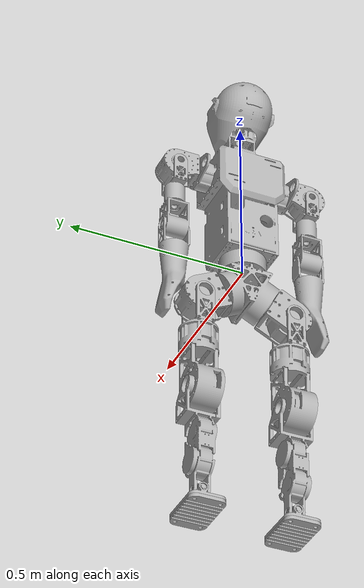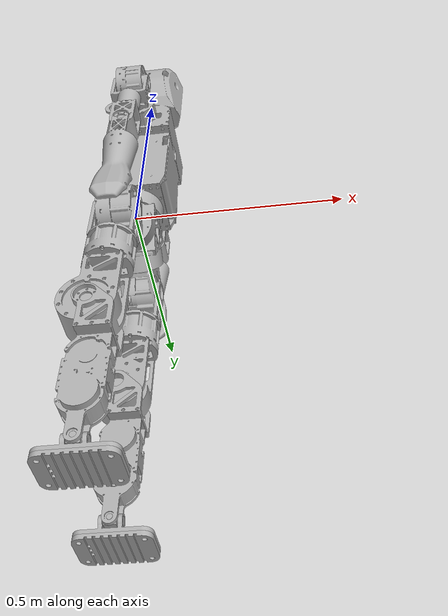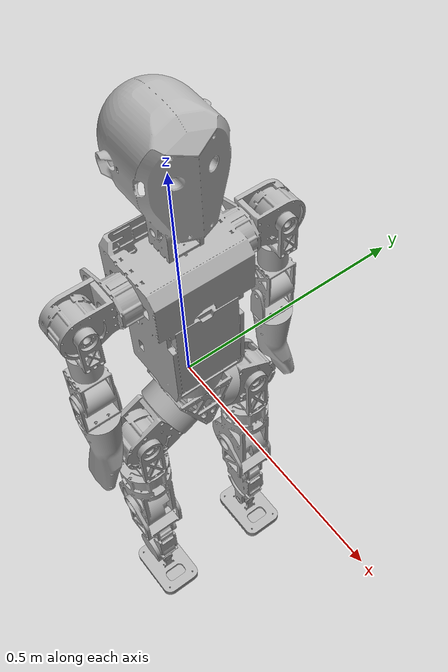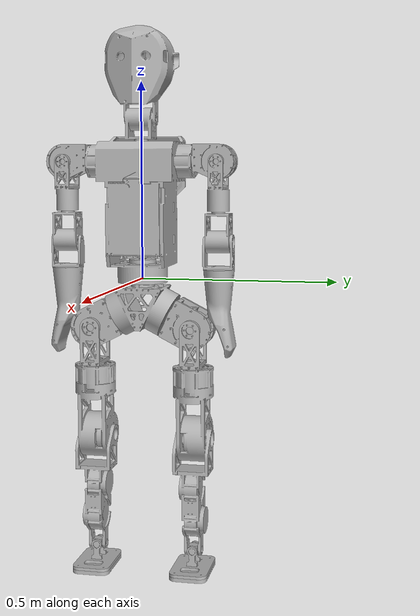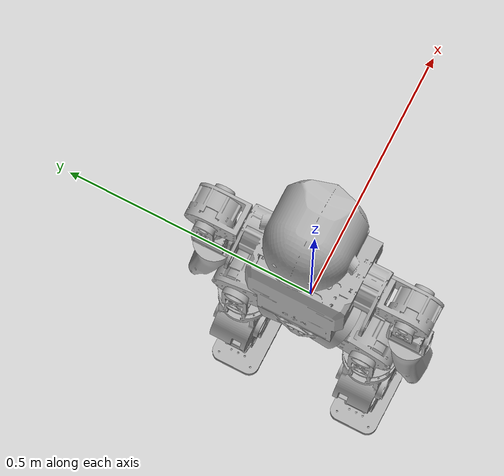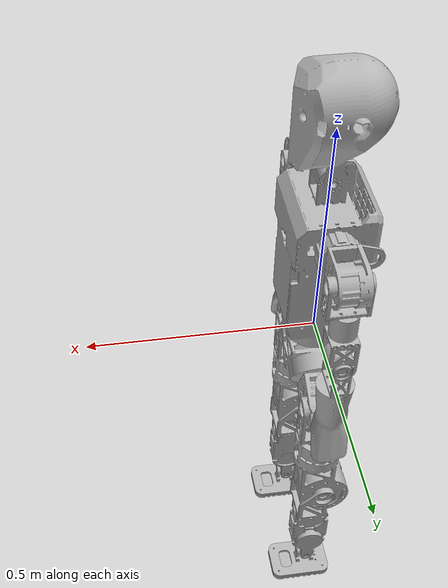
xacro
<?xml version="1.0" ?>
<robot name="roa_v4_21dof" xmlns:xacro="http://www.ros.org/wiki/xacro">

<xacro:include filename="$(find roa_motion_player)/description/urdf/materials.xacro" />
<xacro:include filename="$(find roa_motion_player)/description/urdf/roa_v4_21dof.trans" />
<xacro:include filename="$(find roa_motion_player)/description/urdf/roa_v4_21dof.gazebo" />

<!-- KDL requires the root link to have no inertia. Keep base_link as the
     robot body frame and attach it to a massless root frame. -->
<link name="base_footprint"/>
<joint name="base_footprint_to_base_link" type="fixed">
  <origin xyz="0 0 0" rpy="0 0 0"/>
  <parent link="base_footprint"/>
  <child link="base_link"/>
</joint>

<link name="base_link">
  <inertial>
    <origin xyz="-7.163416177454016e-06 2.809900717835358e-06 -0.0782412023463746" rpy="0 0 0"/>
    <mass value="3.70159"/>
    <inertia ixx="0.011475" iyy="0.00674" izz="0.011258" ixy="0.0" iyz="-1e-06" ixz="0.0"/>
  </inertial>
  <visual>
    <origin xyz="0 0 0" rpy="0 0 0"/>
    <geometry>
      <mesh filename="package://roa_motion_player/meshes/base_link.stl" scale="0.001 0.001 0.001"/>
    </geometry>
    <material name="silver"/>
  </visual>
  <collision>
    <origin xyz="0 0 0" rpy="0 0 0"/>
    <geometry>
      <mesh filename="package://roa_motion_player/meshes/base_link.stl" scale="0.001 0.001 0.001"/>
    </geometry>
  </collision>
</link>

<link name="right_hip_1">
  <inertial>
    <origin xyz="0.0005121134176557427 -0.05449331072961443 -0.027771520101012803" rpy="0 0 0"/>
    <mass value="1.66507"/>
    <inertia ixx="0.002772" iyy="0.001996" izz="0.002306" ixy="4e-06" iyz="-0.000214" ixz="2e-06"/>
  </inertial>
  <visual>
    <origin xyz="0.0 0.069232 0.095096" rpy="0 0 0"/>
    <geometry>
      <mesh filename="package://roa_motion_player/meshes/right_hip_1.stl" scale="0.001 0.001 0.001"/>
    </geometry>
    <material name="silver"/>
  </visual>
  <collision>
    <origin xyz="0.0 0.069232 0.095096" rpy="0 0 0"/>
    <geometry>
      <mesh filename="package://roa_motion_player/meshes/right_hip_1.stl" scale="0.001 0.001 0.001"/>
    </geometry>
  </collision>
</link>

<link name="left_hip_1">
  <inertial>
    <origin xyz="0.0005121134310494496 0.054497797487398 -0.02776271434742536" rpy="0 0 0"/>
    <mass value="1.66507"/>
    <inertia ixx="0.002772" iyy="0.001995" izz="0.002307" ixy="-4e-06" iyz="0.000214" ixz="2e-06"/>
  </inertial>
  <visual>
    <origin xyz="-0.0 -0.069232 0.095096" rpy="0 0 0"/>
    <geometry>
      <mesh filename="package://roa_motion_player/meshes/left_hip_1.stl" scale="0.001 0.001 0.001"/>
    </geometry>
    <material name="silver"/>
  </visual>
  <collision>
    <origin xyz="-0.0 -0.069232 0.095096" rpy="0 0 0"/>
    <geometry>
      <mesh filename="package://roa_motion_player/meshes/left_hip_1.stl" scale="0.001 0.001 0.001"/>
    </geometry>
  </collision>
</link>

<link name="right_hip_thigh_1">
  <inertial>
    <origin xyz="-0.03335982358339286 -8.21199821306462e-05 -0.05614032259859167" rpy="0 0 0"/>
    <mass value="0.321395200370441"/>
    <inertia ixx="0.000667" iyy="0.001041" izz="0.000535" ixy="1e-06" iyz="1e-06" ixz="-3.2e-05"/>
  </inertial>
  <visual>
    <origin xyz="-0.03275 0.132493 0.12733" rpy="0 0 0"/>
    <geometry>
      <mesh filename="package://roa_motion_player/meshes/right_hip_thigh_1.stl" scale="0.001 0.001 0.001"/>
    </geometry>
    <material name="silver"/>
  </visual>
  <collision>
    <origin xyz="-0.03275 0.132493 0.12733" rpy="0 0 0"/>
    <geometry>
      <mesh filename="package://roa_motion_player/meshes/right_hip_thigh_1.stl" scale="0.001 0.001 0.001"/>
    </geometry>
  </collision>
</link>

<link name="left_hip_thigh_1">
  <inertial>
    <origin xyz="-0.033359823569079336 -8.148136162097752e-05 -0.056141181884098196" rpy="0 0 0"/>
    <mass value="0.32139520037044045"/>
    <inertia ixx="0.000667" iyy="0.001041" izz="0.000535" ixy="1e-06" iyz="1e-06" ixz="-3.2e-05"/>
  </inertial>
  <visual>
    <origin xyz="-0.03275 -0.132493 0.127329" rpy="0 0 0"/>
    <geometry>
      <mesh filename="package://roa_motion_player/meshes/left_hip_thigh_1.stl" scale="0.001 0.001 0.001"/>
    </geometry>
    <material name="silver"/>
  </visual>
  <collision>
    <origin xyz="-0.03275 -0.132493 0.127329" rpy="0 0 0"/>
    <geometry>
      <mesh filename="package://roa_motion_player/meshes/left_hip_thigh_1.stl" scale="0.001 0.001 0.001"/>
    </geometry>
  </collision>
</link>

<link name="left_thigh_1">
  <inertial>
    <origin xyz="-0.010661779968585536 0.0010122408638040814 -0.11984559303234843" rpy="0 0 0"/>
    <mass value="3.658988"/>
    <inertia ixx="0.024147" iyy="0.02533" izz="0.00496" ixy="2.6e-05" iyz="0.000185" ixz="-0.002515"/>
  </inertial>
  <visual>
    <origin xyz="0.0025 -0.132493 0.237329" rpy="0 0 0"/>
    <geometry>
      <mesh filename="package://roa_motion_player/meshes/left_thigh_1.stl" scale="0.001 0.001 0.001"/>
    </geometry>
    <material name="silver"/>
  </visual>
  <collision>
    <origin xyz="0.0025 -0.132493 0.237329" rpy="0 0 0"/>
    <geometry>
      <mesh filename="package://roa_motion_player/meshes/left_thigh_1.stl" scale="0.001 0.001 0.001"/>
    </geometry>
  </collision>
</link>

<link name="right_thigh_1">
  <inertial>
    <origin xyz="-0.010661894115610124 -0.0008413371825257976 -0.11984473242194463" rpy="0 0 0"/>
    <mass value="3.658988"/>
    <inertia ixx="0.024148" iyy="0.02533" izz="0.004961" ixy="-3.2e-05" iyz="-0.000243" ixz="-0.002515"/>
  </inertial>
  <visual>
    <origin xyz="0.0025 0.132493 0.23733" rpy="0 0 0"/>
    <geometry>
      <mesh filename="package://roa_motion_player/meshes/right_thigh_1.stl" scale="0.001 0.001 0.001"/>
    </geometry>
    <material name="silver"/>
  </visual>
  <collision>
    <origin xyz="0.0025 0.132493 0.23733" rpy="0 0 0"/>
    <geometry>
      <mesh filename="package://roa_motion_player/meshes/right_thigh_1.stl" scale="0.001 0.001 0.001"/>
    </geometry>
  </collision>
</link>

<link name="left_shin_1">
  <inertial>
    <origin xyz="0.017021859166089302 -0.032298257853799944 -0.1524222893938174" rpy="0 0 0"/>
    <mass value="1.9365"/>
    <inertia ixx="0.009952" iyy="0.010041" izz="0.001718" ixy="-9e-06" iyz="0.000435" ixz="-5.3e-05"/>
  </inertial>
  <visual>
    <origin xyz="0.0225 -0.163993 0.424829" rpy="0 0 0"/>
    <geometry>
      <mesh filename="package://roa_motion_player/meshes/left_shin_1.stl" scale="0.001 0.001 0.001"/>
    </geometry>
    <material name="silver"/>
  </visual>
  <collision>
    <origin xyz="0.0225 -0.163993 0.424829" rpy="0 0 0"/>
    <geometry>
      <mesh filename="package://roa_motion_player/meshes/left_shin_1.stl" scale="0.001 0.001 0.001"/>
    </geometry>
  </collision>
</link>

<link name="right_shin_1">
  <inertial>
    <origin xyz="0.017025964170585006 0.03229673179287712 -0.15232292660081742" rpy="0 0 0"/>
    <mass value="1.9365"/>
    <inertia ixx="0.009945" iyy="0.010033" izz="0.001718" ixy="9e-06" iyz="-0.000435" ixz="-6.1e-05"/>
  </inertial>
  <visual>
    <origin xyz="0.022504 0.163991 0.42483" rpy="0 0 0"/>
    <geometry>
      <mesh filename="package://roa_motion_player/meshes/right_shin_1.stl" scale="0.001 0.001 0.001"/>
    </geometry>
    <material name="silver"/>
  </visual>
  <collision>
    <origin xyz="0.022504 0.163991 0.42483" rpy="0 0 0"/>
    <geometry>
      <mesh filename="package://roa_motion_player/meshes/right_shin_1.stl" scale="0.001 0.001 0.001"/>
    </geometry>
  </collision>
</link>

<link name="right_ankle_1">
  <inertial>
    <origin xyz="0.00030298070446027527 -0.014499584864505796 9.412528256813602e-08" rpy="0 0 0"/>
    <mass value="0.05161853272203562"/>
    <inertia ixx="5e-06" iyy="9e-06" izz="1e-05" ixy="0.0" iyz="0.0" ixz="-0.0"/>
  </inertial>
  <visual>
    <origin xyz="0.006498 0.117193 0.72383" rpy="0 0 0"/>
    <geometry>
      <mesh filename="package://roa_motion_player/meshes/right_ankle_1.stl" scale="0.001 0.001 0.001"/>
    </geometry>
    <material name="silver"/>
  </visual>
  <collision>
    <origin xyz="0.006498 0.117193 0.72383" rpy="0 0 0"/>
    <geometry>
      <mesh filename="package://roa_motion_player/meshes/right_ankle_1.stl" scale="0.001 0.001 0.001"/>
    </geometry>
  </collision>
</link>

<link name="left_ankle_1">
  <inertial>
    <origin xyz="0.00030487547740298306 0.014500554663313778 -7.741002557848375e-07" rpy="0 0 0"/>
    <mass value="0.05161853272203551"/>
    <inertia ixx="5e-06" iyy="9e-06" izz="1e-05" ixy="0.0" iyz="0.0" ixz="-0.0"/>
  </inertial>
  <visual>
    <origin xyz="0.0065 -0.117193 0.723829" rpy="0 0 0"/>
    <geometry>
      <mesh filename="package://roa_motion_player/meshes/left_ankle_1.stl" scale="0.001 0.001 0.001"/>
    </geometry>
    <material name="silver"/>
  </visual>
  <collision>
    <origin xyz="0.0065 -0.117193 0.723829" rpy="0 0 0"/>
    <geometry>
      <mesh filename="package://roa_motion_player/meshes/left_ankle_1.stl" scale="0.001 0.001 0.001"/>
    </geometry>
  </collision>
</link>

<link name="right_foot_1">
  <inertial>
    <origin xyz="-0.009582401269887304 -4.0426365083279237e-07 -0.04129460873280966" rpy="0 0 0"/>
    <mass value="0.31411093563645764"/>
    <inertia ixx="0.000277" iyy="0.000563" izz="0.000783" ixy="0.0" iyz="-0.0" ixz="9e-06"/>
  </inertial>
  <visual>
    <origin xyz="-0.0132 0.131695 0.72383" rpy="0 0 0"/>
    <geometry>
      <mesh filename="package://roa_motion_player/meshes/right_foot_1.stl" scale="0.001 0.001 0.001"/>
    </geometry>
    <material name="silver"/>
  </visual>
  <collision>
    <origin xyz="-0.0132 0.131695 0.72383" rpy="0 0 0"/>
    <geometry>
      <mesh filename="package://roa_motion_player/meshes/right_foot_1.stl" scale="0.001 0.001 0.001"/>
    </geometry>
  </collision>
</link>

<link name="left_foot_1">
  <inertial>
    <origin xyz="-0.00958250629304781 3.551598510842524e-07 -0.04129547695834768" rpy="0 0 0"/>
    <mass value="0.3141109356364569"/>
    <inertia ixx="0.000277" iyy="0.000563" izz="0.000783" ixy="0.0" iyz="-0.0" ixz="9e-06"/>
  </inertial>
  <visual>
    <origin xyz="-0.0132 -0.131693 0.723829" rpy="0 0 0"/>
    <geometry>
      <mesh filename="package://roa_motion_player/meshes/left_foot_1.stl" scale="0.001 0.001 0.001"/>
    </geometry>
    <material name="silver"/>
  </visual>
  <collision>
    <origin xyz="-0.0132 -0.131693 0.723829" rpy="0 0 0"/>
    <geometry>
      <mesh filename="package://roa_motion_player/meshes/left_foot_1.stl" scale="0.001 0.001 0.001"/>
    </geometry>
  </collision>
</link>

<link name="right_TPU_pad_1">
  <inertial>
    <origin xyz="-0.0594239452759319 0.03499959573633321 -0.004620143823127032" rpy="0 0 0"/>
    <mass value="0.11647597504873854"/>
    <inertia ixx="9.5e-05" iyy="0.000223" izz="0.000316" ixy="-0.0" iyz="0.0" ixz="-0.0"/>
  </inertial>
  <visual>
    <origin xyz="-0.0682 0.166695 0.77183" rpy="0 0 0"/>
    <geometry>
      <mesh filename="package://roa_motion_player/meshes/right_TPU_pad_1.stl" scale="0.001 0.001 0.001"/>
    </geometry>
    <material name="silver"/>
  </visual>
  <collision>
    <origin xyz="-0.0682 0.166695 0.77183" rpy="0 0 0"/>
    <geometry>
      <mesh filename="package://roa_motion_player/meshes/right_TPU_pad_1.stl" scale="0.001 0.001 0.001"/>
    </geometry>
  </collision>
</link>

<link name="left_TPU_pad_1">
  <inertial>
    <origin xyz="-0.05942405029909288 -0.034999644840164434 -0.004621012048665607" rpy="0 0 0"/>
    <mass value="0.11647597504873854"/>
    <inertia ixx="9.5e-05" iyy="0.000223" izz="0.000316" ixy="-0.0" iyz="0.0" ixz="-0.0"/>
  </inertial>
  <visual>
    <origin xyz="-0.0682 -0.166693 0.771829" rpy="0 0 0"/>
    <geometry>
      <mesh filename="package://roa_motion_player/meshes/left_TPU_pad_1.stl" scale="0.001 0.001 0.001"/>
    </geometry>
    <material name="silver"/>
  </visual>
  <collision>
    <origin xyz="-0.0682 -0.166693 0.771829" rpy="0 0 0"/>
    <geometry>
      <mesh filename="package://roa_motion_player/meshes/left_TPU_pad_1.stl" scale="0.001 0.001 0.001"/>
    </geometry>
  </collision>
</link>

<link name="torso_dummy_1">
  <inertial>
    <origin xyz="0.0063897 0.006826 0.219355" rpy="0 0 0"/>
    <mass value="10.56"/>
    <inertia
        ixx="0.2640893"
        iyy="0.2405354"
        izz="0.0547235"
        ixy="-0.00020524"
        ixz="0.00070433"
        iyz="-0.00233757"/>
  </inertial>

  <visual>
    <origin xyz="0 0 0" rpy="0 0 0"/>
    <geometry>
      <mesh
          filename="package://roa_motion_player/meshes/torso_dummy_1.stl"
          scale="0.001 0.001 0.001"/>
    </geometry>
    <material name="silver"/>
  </visual>

  <collision>
    <origin xyz="0 0 0" rpy="0 0 0"/>
    <geometry>
      <mesh
          filename="package://roa_motion_player/meshes/torso_dummy_1.stl"
          scale="0.001 0.001 0.001"/>
    </geometry>
  </collision>
</link>

<link name="left_shoulder_1">
  <inertial>
    <origin xyz="-0.0026111732343341966 0.05925170766995819 0.0016708632691230796" rpy="0 0 0"/>
    <mass value="0.9861530183252302"/>
    <inertia ixx="0.00121" iyy="0.000773" izz="0.00107" ixy="0.0" iyz="6.6e-05" ixz="1e-06"/>
  </inertial>
  <visual>
    <origin xyz="-0.005 -0.1325 -0.2995" rpy="0 0 0"/>
    <geometry>
      <mesh filename="package://roa_motion_player/meshes/left_shoulder_1.stl" scale="0.001 0.001 0.001"/>
    </geometry>
    <material name="silver"/>
  </visual>
  <collision>
    <origin xyz="-0.005 -0.1325 -0.2995" rpy="0 0 0"/>
    <geometry>
      <mesh filename="package://roa_motion_player/meshes/left_shoulder_1.stl" scale="0.001 0.001 0.001"/>
    </geometry>
  </collision>
</link>

<link name="left_upper_arm_1">
  <inertial>
    <origin xyz="-0.02849405549868654 1.591830606434419e-05 -0.0733249736998087" rpy="0 0 0"/>
    <mass value="0.57489496004282"/>
    <inertia ixx="0.000922" iyy="0.001115" izz="0.000397" ixy="-0.0" iyz="-0.0" ixz="4.6e-05"/>
  </inertial>
  <visual>
    <origin xyz="-0.031 -0.1995 -0.2995" rpy="0 0 0"/>
    <geometry>
      <mesh filename="package://roa_motion_player/meshes/left_upper_arm_1.stl" scale="0.001 0.001 0.001"/>
    </geometry>
    <material name="silver"/>
  </visual>
  <collision>
    <origin xyz="-0.031 -0.1995 -0.2995" rpy="0 0 0"/>
    <geometry>
      <mesh filename="package://roa_motion_player/meshes/left_upper_arm_1.stl" scale="0.001 0.001 0.001"/>
    </geometry>
  </collision>
</link>

<link name="left_lower_arm_1">
  <inertial>
    <origin xyz="-1.2688175113881144e-05 0.0011580057847586922 -0.06833500051346542" rpy="0 0 0"/>
    <mass value="0.5116000430017309"/>
    <inertia ixx="0.000568" iyy="0.000509" izz="0.000292" ixy="-0.0" iyz="-8e-06" ixz="0.0"/>
  </inertial>
  <visual>
    <origin xyz="-0.0035 -0.1995 -0.1775" rpy="0 0 0"/>
    <geometry>
      <mesh filename="package://roa_motion_player/meshes/left_lower_arm_1.stl" scale="0.001 0.001 0.001"/>
    </geometry>
    <material name="silver"/>
  </visual>
  <collision>
    <origin xyz="-0.0035 -0.1995 -0.1775" rpy="0 0 0"/>
    <geometry>
      <mesh filename="package://roa_motion_player/meshes/left_lower_arm_1.stl" scale="0.001 0.001 0.001"/>
    </geometry>
  </collision>
</link>

<link name="right_shoulder_1">
  <inertial>
    <origin xyz="-0.0026111732343283033 -0.05925170766996374 0.0016708632691233571" rpy="0 0 0"/>
    <mass value="0.9861530183251093"/>
    <inertia ixx="0.00121" iyy="0.000773" izz="0.00107" ixy="-0.0" iyz="-6.6e-05" ixz="1e-06"/>
  </inertial>
  <visual>
    <origin xyz="-0.005 0.1325 -0.2995" rpy="0 0 0"/>
    <geometry>
      <mesh filename="package://roa_motion_player/meshes/right_shoulder_1.stl" scale="0.001 0.001 0.001"/>
    </geometry>
    <material name="silver"/>
  </visual>
  <collision>
    <origin xyz="-0.005 0.1325 -0.2995" rpy="0 0 0"/>
    <geometry>
      <mesh filename="package://roa_motion_player/meshes/right_shoulder_1.stl" scale="0.001 0.001 0.001"/>
    </geometry>
  </collision>
</link>

<link name="right_upper_arm_1">
  <inertial>
    <origin xyz="-0.02849405549867796 1.5918306037449037e-05 -0.07332497369980742" rpy="0 0 0"/>
    <mass value="0.5748949600428195"/>
    <inertia ixx="0.000922" iyy="0.001115" izz="0.000397" ixy="-0.0" iyz="-0.0" ixz="4.6e-05"/>
  </inertial>
  <visual>
    <origin xyz="-0.031 0.1995 -0.2995" rpy="0 0 0"/>
    <geometry>
      <mesh filename="package://roa_motion_player/meshes/right_upper_arm_1.stl" scale="0.001 0.001 0.001"/>
    </geometry>
    <material name="silver"/>
  </visual>
  <collision>
    <origin xyz="-0.031 0.1995 -0.2995" rpy="0 0 0"/>
    <geometry>
      <mesh filename="package://roa_motion_player/meshes/right_upper_arm_1.stl" scale="0.001 0.001 0.001"/>
    </geometry>
  </collision>
</link>

<link name="right_lower_arm_1">
  <inertial>
    <origin xyz="-1.268817505960685e-05 -0.001158010129289816 -0.06833500051339506" rpy="0 0 0"/>
    <mass value="0.5116000430019619"/>
    <inertia ixx="0.000568" iyy="0.000509" izz="0.000292" ixy="0.0" iyz="8e-06" ixz="0.0"/>
  </inertial>
  <visual>
    <origin xyz="-0.0035 0.1995 -0.1775" rpy="0 0 0"/>
    <geometry>
      <mesh filename="package://roa_motion_player/meshes/right_lower_arm_1.stl" scale="0.001 0.001 0.001"/>
    </geometry>
    <material name="silver"/>
  </visual>
  <collision>
    <origin xyz="-0.0035 0.1995 -0.1775" rpy="0 0 0"/>
    <geometry>
      <mesh filename="package://roa_motion_player/meshes/right_lower_arm_1.stl" scale="0.001 0.001 0.001"/>
    </geometry>
  </collision>
</link>

<link name="right_hand_1">
  <inertial>
    <origin xyz="2.3892082779645302e-08 0.023237660827567674 -0.15196250734817957" rpy="0 0 0"/>
    <mass value="0.359"/>
    <inertia ixx="0.008586" iyy="0.008528" izz="0.001327" ixy="-0.0" iyz="-0.001008" ixz="0.0"/>
  </inertial>
  <visual>
    <origin xyz="-0.0035 0.2295 -0.0975" rpy="0 0 0"/>
    <geometry>
      <mesh filename="package://roa_motion_player/meshes/right_hand_1.stl" scale="0.001 0.001 0.001"/>
    </geometry>
    <material name="silver"/>
  </visual>
  <collision>
    <origin xyz="-0.0035 0.2295 -0.0975" rpy="0 0 0"/>
    <geometry>
      <mesh filename="package://roa_motion_player/meshes/right_hand_1.stl" scale="0.001 0.001 0.001"/>
    </geometry>
  </collision>
</link>

<link name="left_hand_1">
  <inertial>
    <origin xyz="-8.931090637182004e-08 -0.023237637063275002 -0.15196249875367882" rpy="0 0 0"/>
    <mass value="0.359"/>
    <inertia ixx="0.008586" iyy="0.008528" izz="0.001327" ixy="0.0" iyz="0.001008" ixz="0.0"/>
  </inertial>
  <visual>
    <origin xyz="-0.0035 -0.2295 -0.0975" rpy="0 0 0"/>
    <geometry>
      <mesh filename="package://roa_motion_player/meshes/left_hand_1.stl" scale="0.001 0.001 0.001"/>
    </geometry>
    <material name="silver"/>
  </visual>
  <collision>
    <origin xyz="-0.0035 -0.2295 -0.0975" rpy="0 0 0"/>
    <geometry>
      <mesh filename="package://roa_motion_player/meshes/left_hand_1.stl" scale="0.001 0.001 0.001"/>
    </geometry>
  </collision>
</link>

<link name="imu_sensor_1">
  <inertial>
    <origin xyz="-1.92945889108216e-05 6.303846115872468e-05 0.0007480314385152481" rpy="0 0 0"/>
    <mass value="0.0012071805701893612"/>
    <inertia ixx="0.0" iyy="0.0" izz="0.0" ixy="0.0" iyz="0.0" ixz="0.0"/>
  </inertial>
  <visual>
    <origin xyz="-0.0 0.0 -0.0505" rpy="0 0 0"/>
    <geometry>
      <mesh filename="package://roa_motion_player/meshes/imu_sensor_1.stl" scale="0.001 0.001 0.001"/>
    </geometry>
    <material name="silver"/>
  </visual>
  <collision>
    <origin xyz="-0.0 0.0 -0.0505" rpy="0 0 0"/>
    <geometry>
      <mesh filename="package://roa_motion_player/meshes/imu_sensor_1.stl" scale="0.001 0.001 0.001"/>
    </geometry>
  </collision>
</link>

<joint name="right_hip_pitch" type="revolute">
  <origin xyz="0.0 -0.069232 -0.095096" rpy="0 0 0"/>
  <parent link="base_link"/>
  <child link="right_hip_1"/>
  <axis xyz="-0.0 -0.891007 -0.45399"/>
  <limit upper="1.570796" lower="-1.570796" effort="120.0" velocity="20.9"/>
</joint>

<joint name="left_hip_pitch" type="revolute">
  <origin xyz="0.0 0.069232 -0.095096" rpy="0 0 0"/>
  <parent link="base_link"/>
  <child link="left_hip_1"/>
  <axis xyz="0.0 0.891007 -0.45399"/>
  <limit upper="1.570796" lower="-1.570796" effort="120.0" velocity="20.9"/>
</joint>

<joint name="right_hip_roll" type="revolute">
  <origin xyz="0.03275 -0.063261 -0.032234" rpy="0 0 0"/>
  <parent link="right_hip_1"/>
  <child link="right_hip_thigh_1"/>
  <axis xyz="1.0 0.0 -0.0"/>
  <limit upper="0.150000" lower="-0.468000" effort="60.0" velocity="20.4"/>
</joint>

<joint name="left_hip_roll" type="revolute">
  <origin xyz="0.03275 0.063261 -0.032233" rpy="0 0 0"/>
  <parent link="left_hip_1"/>
  <child link="left_hip_thigh_1"/>
  <axis xyz="1.0 0.0 0.0"/>
  <limit upper="0.468000" lower="-0.150000" effort="60.0" velocity="20.4"/>
</joint>

<joint name="left_hip_yaw" type="revolute">
  <origin xyz="-0.03525 0.0 -0.11" rpy="0 0 0"/>
  <parent link="left_hip_thigh_1"/>
  <child link="left_thigh_1"/>
  <axis xyz="-0.0 0.0 1.0"/>
  <limit upper="1.570796" lower="-1.570796" effort="60.0" velocity="20.4"/>
</joint>

<joint name="right_hip_yaw" type="revolute">
  <origin xyz="-0.03525 0.0 -0.11" rpy="0 0 0"/>
  <parent link="right_hip_thigh_1"/>
  <child link="right_thigh_1"/>
  <axis xyz="-0.0 0.0 1.0"/>
  <limit upper="1.570796" lower="-1.570796" effort="60.0" velocity="20.4"/>
</joint>

<joint name="left_knee_pitch" type="revolute">
  <origin xyz="-0.02 0.0315 -0.1875" rpy="0 0 0"/>
  <parent link="left_thigh_1"/>
  <child link="left_shin_1"/>
  <axis xyz="-0.0 1.0 0.0"/>
  <limit upper="1.570796" lower="-1.570796" effort="120.0" velocity="20.9"/>
</joint>

<joint name="right_knee_pitch" type="revolute">
  <origin xyz="-0.020004 -0.031498 -0.1875" rpy="0 0 0"/>
  <parent link="right_thigh_1"/>
  <child link="right_shin_1"/>
  <axis xyz="-0.000135 -1.0 0.0"/>
  <limit upper="1.570796" lower="-1.570796" effort="120.0" velocity="20.9"/>
</joint>

<joint name="right_ankle_pitch" type="revolute">
  <origin xyz="0.016006 0.046798 -0.299" rpy="0 0 0"/>
  <parent link="right_shin_1"/>
  <child link="right_ankle_1"/>
  <axis xyz="-0.000135 -1.0 0.0"/>
  <limit upper="0.628319" lower="-0.689405" effort="36.0" velocity="50.3"/>
</joint>

<joint name="left_ankle_pitch" type="revolute">
  <origin xyz="0.016 -0.0468 -0.299" rpy="0 0 0"/>
  <parent link="left_shin_1"/>
  <child link="left_ankle_1"/>
  <axis xyz="0.0 1.0 0.0"/>
  <limit upper="0.689405" lower="-0.628319" effort="36.0" velocity="50.3"/>
</joint>

<joint name="right_ankle_roll" type="revolute">
  <origin xyz="0.019698 -0.014502 0.0" rpy="0 0 0"/>
  <parent link="right_ankle_1"/>
  <child link="right_foot_1"/>
  <axis xyz="1.0 0.0 -0.0"/>
  <limit upper="0.314159" lower="-0.305433" effort="36.0" velocity="50.3"/>
</joint>

<joint name="left_ankle_roll" type="revolute">
  <origin xyz="0.0197 0.0145 0.0" rpy="0 0 0"/>
  <parent link="left_ankle_1"/>
  <child link="left_foot_1"/>
  <axis xyz="1.0 -0.0 0.0"/>
  <limit upper="0.305433" lower="-0.314159" effort="36.0" velocity="50.3"/>
</joint>

<joint name="rigid_right_TPU" type="fixed">
  <origin xyz="0.055 -0.035 -0.048" rpy="0 0 0"/>
  <parent link="right_foot_1"/>
  <child link="right_TPU_pad_1"/>
</joint>

<joint name="rigid_left_TPU" type="fixed">
  <origin xyz="0.055 0.035 -0.048" rpy="0 0 0"/>
  <parent link="left_foot_1"/>
  <child link="left_TPU_pad_1"/>
</joint>

<!-- Motor ID 9 -->
<joint name="torso_yaw" type="revolute">
  <origin xyz="0.0 0.0 0.0" rpy="0 0 0"/>
  <parent link="base_link"/>
  <child link="torso_dummy_1"/>
  <axis xyz="0.0 0.0 1.0"/>
  <limit upper="1.570796" lower="-1.570796" effort="36.0" velocity="50.0"/>
</joint>

<!-- Motor ID 0 -->
<joint name="left_shoulder_pitch" type="revolute">
  <origin xyz="0.005 0.1325 0.2995" rpy="0 0 0"/>
  <parent link="torso_dummy_1"/>
  <child link="left_shoulder_1"/>
  <axis xyz="0.0 1.0 0.0"/>
  <limit upper="3.141593" lower="-3.141593" effort="36.0" velocity="50.0"/>
</joint>

<!-- Motor ID 2 -->
<joint name="left_shoulder_roll" type="revolute">
  <origin xyz="0.026 0.067 0.0" rpy="0 0 0"/>
  <parent link="left_shoulder_1"/>
  <child link="left_upper_arm_1"/>
  <axis xyz="1.0 0.0 0.0"/>
  <limit upper="3.141593" lower="-3.141593" effort="36.0" velocity="50.0"/>
</joint>

<!-- Motor ID 4 -->
<joint name="left_arm_yaw" type="revolute">
  <origin xyz="-0.0275 0.0 -0.122" rpy="0 0 0"/>
  <parent link="left_upper_arm_1"/>
  <child link="left_lower_arm_1"/>
  <axis xyz="0.0 0.0 -1.0"/>
  <limit upper="3.141593" lower="-3.141593" effort="14.0" velocity="33.0"/>
</joint>

<!-- Motor ID 1 -->
<joint name="right_shoulder_pitch" type="revolute">
  <origin xyz="0.005 -0.1325 0.2995" rpy="0 0 0"/>
  <parent link="torso_dummy_1"/>
  <child link="right_shoulder_1"/>
  <axis xyz="0.0 -1.0 0.0"/>
  <limit upper="3.141593" lower="-3.141593" effort="36.0" velocity="50.0"/>
</joint>

<!-- Motor ID 3 -->
<joint name="right_shoulder_roll" type="revolute">
  <origin xyz="0.026 -0.067 0.0" rpy="0 0 0"/>
  <parent link="right_shoulder_1"/>
  <child link="right_upper_arm_1"/>
  <axis xyz="1.0 0.0 0.0"/>
  <limit upper="3.141593" lower="-3.141593" effort="36.0" velocity="50.0"/>
</joint>

<!-- Motor ID 5 -->
<joint name="right_arm_yaw" type="revolute">
  <origin xyz="-0.0275 0.0 -0.122" rpy="0 0 0"/>
  <parent link="right_upper_arm_1"/>
  <child link="right_lower_arm_1"/>
  <axis xyz="0.0 0.0 -1.0"/>
  <limit upper="3.141593" lower="-3.141593" effort="14.0" velocity="33.0"/>
</joint>

<!-- Motor ID 7 -->
<joint name="right_arm_pitch" type="revolute">
  <origin xyz="0.0 -0.03 -0.08" rpy="0 0 0"/>
  <parent link="right_lower_arm_1"/>
  <child link="right_hand_1"/>
  <axis xyz="0.0 -1.0 0.0"/>
  <limit upper="3.141593" lower="-3.141593" effort="14.0" velocity="33.0"/>
</joint>

<!-- Motor ID 6 -->
<joint name="left_arm_pitch" type="revolute">
  <origin xyz="0.0 0.03 -0.08" rpy="0 0 0"/>
  <parent link="left_lower_arm_1"/>
  <child link="left_hand_1"/>
  <axis xyz="0.0 1.0 0.0"/>
  <limit upper="3.141593" lower="-3.141593" effort="14.0" velocity="33.0"/>
</joint>

<joint name="imu" type="fixed">
  <origin xyz="0.0 -0.0 0.0505" rpy="0 0 0"/>
  <parent link="torso_dummy_1"/>
  <child link="imu_sensor_1"/>
</joint>

</robot>

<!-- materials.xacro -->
<robot name="roa_v4_21dof_materials" xmlns:xacro="http://www.ros.org/wiki/xacro" >

<material name="silver">
  <color rgba="0.700 0.700 0.700 1.000"/>
</material>

</robot>

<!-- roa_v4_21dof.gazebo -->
<robot name="roa_v4_21dof_gazebo" xmlns:xacro="http://www.ros.org/wiki/xacro" >

<xacro:property name="body_color" value="Gazebo/Silver" />

<gazebo>
  <plugin name="control" filename="libgazebo_ros_control.so"/>
</gazebo>
<gazebo reference="base_link">
  <material>${body_color}</material>
  <mu1>0.2</mu1>
  <mu2>0.2</mu2>
  <self_collide>true</self_collide>
  <gravity>true</gravity>
</gazebo>

<gazebo reference="right_hip_1">
  <material>${body_color}</material>
  <mu1>0.2</mu1>
  <mu2>0.2</mu2>
  <self_collide>true</self_collide>
</gazebo>

<gazebo reference="left_hip_1">
  <material>${body_color}</material>
  <mu1>0.2</mu1>
  <mu2>0.2</mu2>
  <self_collide>true</self_collide>
</gazebo>

<gazebo reference="right_hip_thigh_1">
  <material>${body_color}</material>
  <mu1>0.2</mu1>
  <mu2>0.2</mu2>
  <self_collide>true</self_collide>
</gazebo>

<gazebo reference="left_hip_thigh_1">
  <material>${body_color}</material>
  <mu1>0.2</mu1>
  <mu2>0.2</mu2>
  <self_collide>true</self_collide>
</gazebo>

<gazebo reference="left_thigh_1">
  <material>${body_color}</material>
  <mu1>0.2</mu1>
  <mu2>0.2</mu2>
  <self_collide>true</self_collide>
</gazebo>

<gazebo reference="right_thigh_1">
  <material>${body_color}</material>
  <mu1>0.2</mu1>
  <mu2>0.2</mu2>
  <self_collide>true</self_collide>
</gazebo>

<gazebo reference="left_shin_1">
  <material>${body_color}</material>
  <mu1>0.2</mu1>
  <mu2>0.2</mu2>
  <self_collide>true</self_collide>
</gazebo>

<gazebo reference="right_shin_1">
  <material>${body_color}</material>
  <mu1>0.2</mu1>
  <mu2>0.2</mu2>
  <self_collide>true</self_collide>
</gazebo>

<gazebo reference="right_ankle_1">
  <material>${body_color}</material>
  <mu1>0.2</mu1>
  <mu2>0.2</mu2>
  <self_collide>true</self_collide>
</gazebo>

<gazebo reference="left_ankle_1">
  <material>${body_color}</material>
  <mu1>0.2</mu1>
  <mu2>0.2</mu2>
  <self_collide>true</self_collide>
</gazebo>

<gazebo reference="right_foot_1">
  <material>${body_color}</material>
  <mu1>0.2</mu1>
  <mu2>0.2</mu2>
  <self_collide>true</self_collide>
</gazebo>

<gazebo reference="left_foot_1">
  <material>${body_color}</material>
  <mu1>0.2</mu1>
  <mu2>0.2</mu2>
  <self_collide>true</self_collide>
</gazebo>

<gazebo reference="right_TPU_pad_1">
  <material>${body_color}</material>
  <mu1>0.2</mu1>
  <mu2>0.2</mu2>
  <self_collide>true</self_collide>
</gazebo>

<gazebo reference="left_TPU_pad_1">
  <material>${body_color}</material>
  <mu1>0.2</mu1>
  <mu2>0.2</mu2>
  <self_collide>true</self_collide>
</gazebo>

<gazebo reference="torso_dummy_1">
  <material>${body_color}</material>
  <mu1>0.2</mu1>
  <mu2>0.2</mu2>
  <self_collide>true</self_collide>
</gazebo>

<gazebo reference="left_shoulder_1">
  <material>${body_color}</material>
  <mu1>0.2</mu1>
  <mu2>0.2</mu2>
  <self_collide>true</self_collide>
</gazebo>

<gazebo reference="left_upper_arm_1">
  <material>${body_color}</material>
  <mu1>0.2</mu1>
  <mu2>0.2</mu2>
  <self_collide>true</self_collide>
</gazebo>

<gazebo reference="left_lower_arm_1">
  <material>${body_color}</material>
  <mu1>0.2</mu1>
  <mu2>0.2</mu2>
  <self_collide>true</self_collide>
</gazebo>

<gazebo reference="right_shoulder_1">
  <material>${body_color}</material>
  <mu1>0.2</mu1>
  <mu2>0.2</mu2>
  <self_collide>true</self_collide>
</gazebo>

<gazebo reference="right_upper_arm_1">
  <material>${body_color}</material>
  <mu1>0.2</mu1>
  <mu2>0.2</mu2>
  <self_collide>true</self_collide>
</gazebo>

<gazebo reference="right_lower_arm_1">
  <material>${body_color}</material>
  <mu1>0.2</mu1>
  <mu2>0.2</mu2>
  <self_collide>true</self_collide>
</gazebo>

<gazebo reference="right_hand_1">
  <material>${body_color}</material>
  <mu1>0.2</mu1>
  <mu2>0.2</mu2>
  <self_collide>true</self_collide>
</gazebo>

<gazebo reference="left_hand_1">
  <material>${body_color}</material>
  <mu1>0.2</mu1>
  <mu2>0.2</mu2>
  <self_collide>true</self_collide>
</gazebo>

<gazebo reference="imu_sensor_1">
  <material>${body_color}</material>
  <mu1>0.2</mu1>
  <mu2>0.2</mu2>
  <self_collide>true</self_collide>
</gazebo>

</robot>
